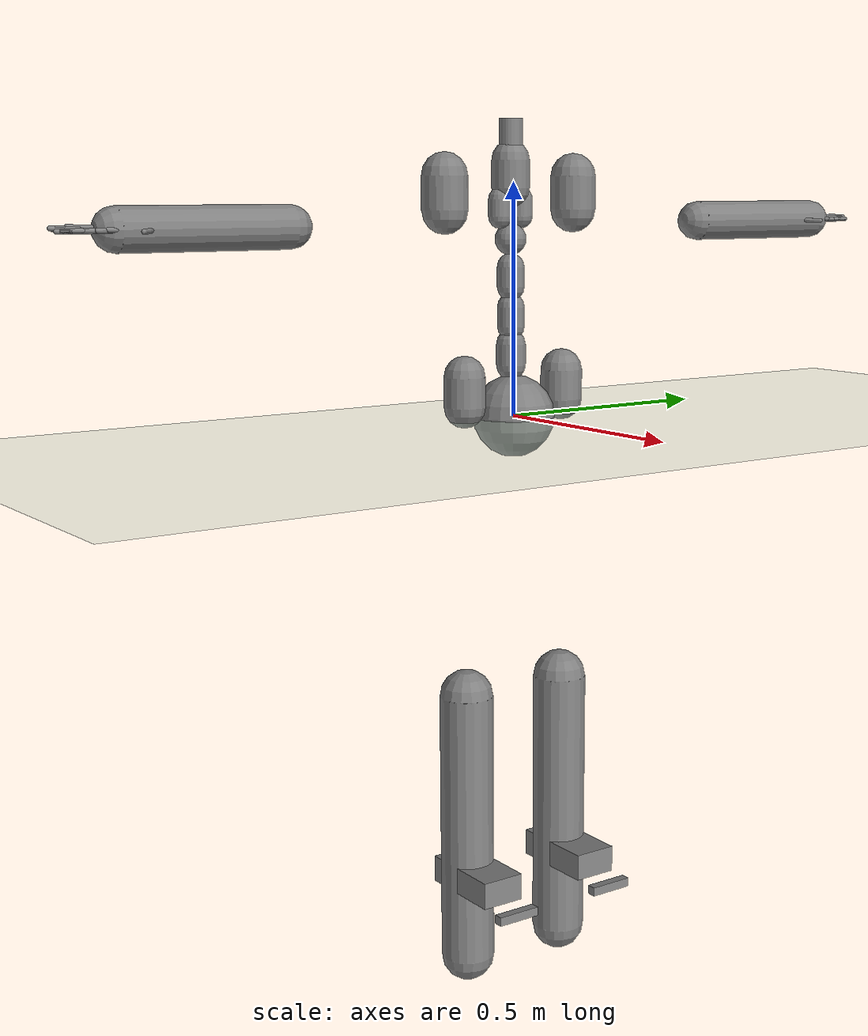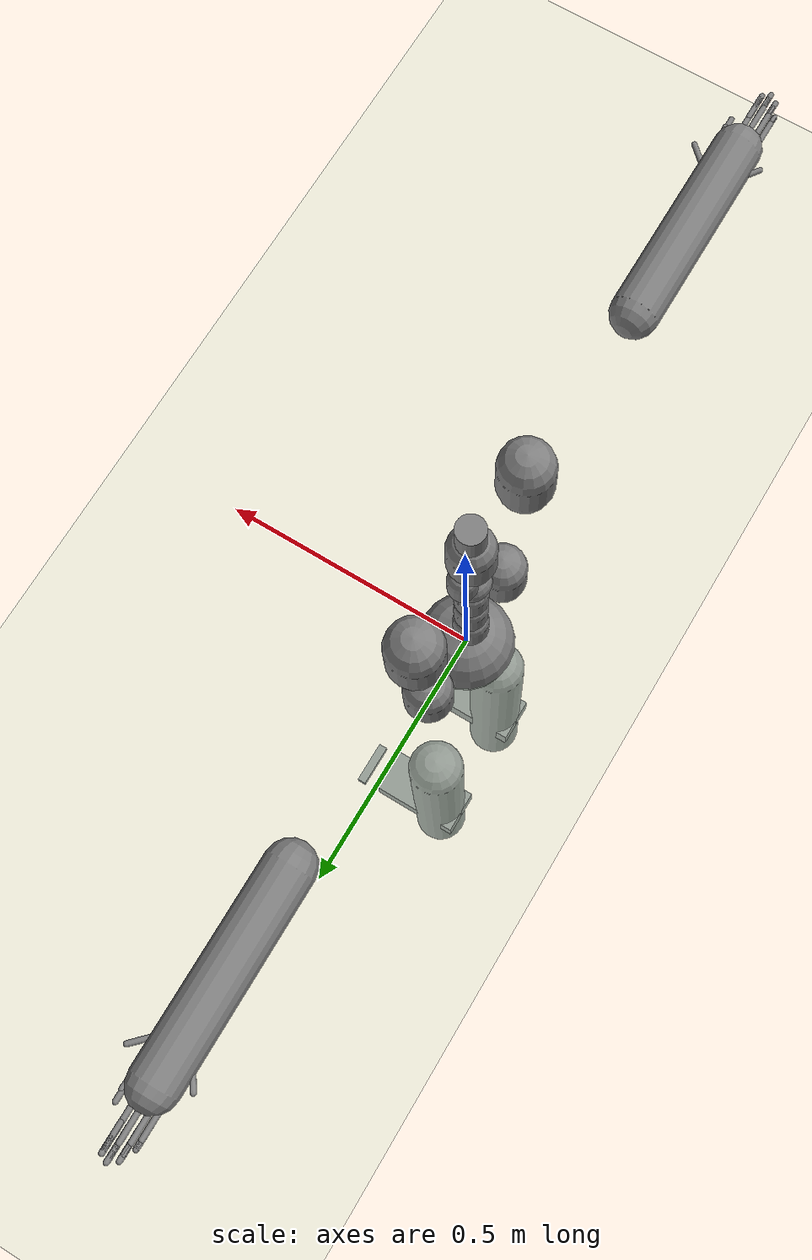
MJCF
<?xml version="1.0" ?>
<mujoco model="humanoid">
  <compiler coordinate="local"/>
  <statistic extent="2" center="0 0 1"/>
  <option timestep="0.00555"/>
  <default>
    <motor ctrlrange="-1 1" ctrllimited="true"/>
    <geom type="capsule" condim="1" friction="1.0 0.05 0.05" solimp=".9 .99 .003" solref=".015 1"/>
    <joint type="hinge" damping="0.1" stiffness="5" armature=".007" limited="true" solimplimit="0 .99 .01"/>
    <site size=".04" group="3"/>
  </default>
  <asset>
    <texture type="skybox" builtin="gradient" rgb1=".4 .5 .6" rgb2="0 0 0" width="100" height="100"/>
    <texture builtin="flat" height="1278" mark="cross" markrgb="1 1 1" name="texgeom" random="0.01" rgb1="0.8 0.6 0.4" rgb2="0.8 0.6 0.4" type="cube" width="127"/>
    <texture builtin="checker" height="100" name="texplane" rgb1="0 0 0" rgb2="0.8 0.8 0.8" type="2d" width="100"/>
    <material name="MatPlane" reflectance="0.5" shininess="1" specular="1" texrepeat="60 60" texture="texplane"/>
    <material name="geom" texture="texgeom" texuniform="true"/>
  </asset>
  <worldbody>
    <light cutoff="100" diffuse="1 1 1" dir="-0 0 -1.3" directional="true" exponent="1" pos="0 0 1.3" specular=".1 .1 .1"/>
    <geom conaffinity="1" condim="3" name="floor" pos="0 0 0" rgba="0.8 0.9 0.8 1" size="100 100 .2" type="plane" material="MatPlane"/>
    <body name="pHipOrigin" pos="0 0 0">
      <freejoint name="pHipOrigin"/>
      <geom type="sphere" contype="1" conaffinity="1" density="4629.6296296296305" size="0.08978" pos="0.0000 0.0000 -0.0000"/>
      <body name="jL5S1" pos="-0.01011643 0 0.09104762">
        <geom type="capsule" contype="1" conaffinity="1" density="1000" fromto="0 0 0.01832 0 0 0.06413" size="0.03206"/>
        <joint name="jL5S1_x" type="hinge" pos="0 0 0" axis="1 0 0" stiffness="500" damping="500" armature="0.02" range="-180.0000 180.0000"/>
        <joint name="jL5S1_y" type="hinge" pos="0 0 0" axis="0 1 0" stiffness="500" damping="500" armature="0.02" range="-180.0000 180.0000"/>
        <joint name="jL5S1_z" type="hinge" pos="0 0 0" axis="0 0 1" stiffness="500" damping="500" armature="0.02" range="-180.0000 180.0000"/>
        <body name="jL4L3" pos="0 0 0.08473152">
          <geom type="capsule" contype="1" conaffinity="1" density="1000" fromto="0 0 0.01695 0 0 0.05931" size="0.02966"/>
          <joint name="jL4L3_x" type="hinge" pos="0 0 0" axis="1 0 0" stiffness="500" damping="500" armature="0.02" range="-180.0000 180.0000"/>
          <joint name="jL4L3_y" type="hinge" pos="0 0 0" axis="0 1 0" stiffness="500" damping="500" armature="0.02" range="-180.0000 180.0000"/>
          <joint name="jL4L3_z" type="hinge" pos="0 0 0" axis="0 0 1" stiffness="500" damping="500" armature="0.02" range="-180.0000 180.0000"/>
          <body name="jL1T12" pos="-0.00065555 0 0.08497111">
            <geom type="capsule" contype="1" conaffinity="1" density="1000" fromto="0 0 0.01699 0 0 0.05948" size="0.02974"/>
            <joint name="jL1T12_x" type="hinge" pos="0 0 0" axis="1 0 0" stiffness="500" damping="500" armature="0.02" range="-180.0000 180.0000"/>
            <joint name="jL1T12_y" type="hinge" pos="0 0 0" axis="0 1 0" stiffness="500" damping="500" armature="0.02" range="-180.0000 180.0000"/>
            <joint name="jL1T12_z" type="hinge" pos="0 0 0" axis="0 0 1" stiffness="500" damping="500" armature="0.02" range="-180.0000 180.0000"/>
            <body name="jT9T8" pos="-0.00065622 0 0.08489215">
              <geom type="sphere" contype="1" conaffinity="1" density="1000" size="0.03396" pos="0.000 0.0000 0.033958"/>
              <joint name="jT9T8_x" type="hinge" pos="0 0 0" axis="1 0 0" stiffness="500" damping="500" armature="0.02" range="-180.0000 180.0000"/>
              <joint name="jT9T8_y" type="hinge" pos="0 0 0" axis="0 1 0" stiffness="500" damping="500" armature="0.02" range="-180.0000 180.0000"/>
              <joint name="jT9T8_z" type="hinge" pos="0 0 0" axis="0 0 1" stiffness="500" damping="500" armature="0.02" range="-180.0000 180.0000"/>
              <body name="jT1C7" pos="0 0 0.11715800">
                <geom type="capsule" contype="1" conaffinity="1" density="1000" fromto="0 0 0.02343 0 0 0.08201" size="0.04101"/>
                <joint name="jT1C7_x" type="hinge" pos="0 0 0" axis="1 0 0" stiffness="500" damping="500" armature="0.02" range="-180.0000 180.0000"/>
                <joint name="jT1C7_y" type="hinge" pos="0 0 0" axis="0 1 0" stiffness="500" damping="500" armature="0.02" range="-180.0000 180.0000"/>
                <joint name="jT1C7_z" type="hinge" pos="0 0 0" axis="0 0 1" stiffness="500" damping="500" armature="0.02" range="-180.0000 180.0000"/>
                <body name="jC1Head" pos="0.00098718 0 0.08367635">
                  <geom type="cylinder" contype="1" conaffinity="1" density="1000" fromto="0 0 0 0 0 0.08368" size="0.02510"/>
                  <joint name="jC1Head_x" type="hinge" pos="0 0 0" axis="1 0 0" stiffness="500" damping="500" armature="0.02" range="-180.0000 180.0000"/>
                  <joint name="jC1Head_y" type="hinge" pos="0 0 0" axis="0 1 0" stiffness="500" damping="500" armature="0.02" range="-180.0000 180.0000"/>
                  <joint name="jC1Head_z" type="hinge" pos="0 0 0" axis="0 0 1" stiffness="500" damping="500" armature="0.02" range="-180.0000 180.0000"/>
                </body>
              </body>
              <body name="jRightT4Shoulder" pos="0 -0.02748572 0.06701621">
                <geom type="capsule" contype="1" conaffinity="1" density="1000" fromto="0 0 0.01449 0 0 0.05070" size="0.02535"/>
                <joint name="jRightT4Shoulder_x" type="hinge" pos="0 0 0" axis="1 0 0" stiffness="500" damping="500" armature="0.02" range="-180.0000 180.0000"/>
                <joint name="jRightT4Shoulder_y" type="hinge" pos="0 0 0" axis="0 1 0" stiffness="500" damping="500" armature="0.02" range="-180.0000 180.0000"/>
                <joint name="jRightT4Shoulder_z" type="hinge" pos="0 0 0" axis="0 0 1" stiffness="500" damping="500" armature="0.02" range="-180.0000 180.0000"/>
                <body name="jRightShoulder" pos="0 -0.14125811 0">
                  <geom type="capsule" contype="1" conaffinity="1" density="1000" fromto="0 0 0.02825 0 0 0.09888" size="0.04944"/>
                  <joint name="jRightShoulder_x" type="hinge" pos="0 0 0" axis="1 0 0" stiffness="500" damping="500" armature="0.02" range="-180.0000 180.0000"/>
                  <joint name="jRightShoulder_y" type="hinge" pos="0 0 0" axis="0 1 0" stiffness="500" damping="500" armature="0.02" range="-180.0000 180.0000"/>
                  <joint name="jRightShoulder_z" type="hinge" pos="0 0 0" axis="0 0 1" stiffness="500" damping="500" armature="0.02" range="-180.0000 180.0000"/>
                  <body name="jRightElbow" pos="0 -0.36475235 0">
                    <geom type="capsule" contype="1" conaffinity="1" density="1000" fromto="0 0 0 0.00000000 -0.36475235 0.00000000" size="0.04377"/>
                    <joint name="jRightElbow_x" type="hinge" pos="0 0 0" axis="1 0 0" stiffness="500" damping="500" armature="0.02" range="-180.0000 180.0000"/>
                    <joint name="jRightElbow_y" type="hinge" pos="0 0 0" axis="0 1 0" stiffness="500" damping="500" armature="0.02" range="-180.0000 180.0000"/>
                    <joint name="jRightElbow_z" type="hinge" pos="0 0 0" axis="0 0 1" stiffness="500" damping="500" armature="0.02" range="-180.0000 180.0000"/>
                    <body name="jRightWrist" pos="0.00010952 -0.27212343 0">
                      <geom density="1000" type="box" pos="0 0 0" size="0.035 0.03 0.01" quat="1.0000 0.0000 0.0000 0.0000"/>
                      <joint name="jRightWrist_x" type="hinge" pos="0 0 0" axis="1 0 0" stiffness="500" damping="500" armature="0.02" range="-180.0000 180.0000"/>
                      <joint name="jRightWrist_y" type="hinge" pos="0 0 0" axis="0 1 0" stiffness="500" damping="500" armature="0.02" range="-180.0000 180.0000"/>
                      <joint name="jRightWrist_z" type="hinge" pos="0 0 0" axis="0 0 1" stiffness="500" damping="500" armature="0.02" range="-180.0000 180.0000"/>
                      <body name="jRightFirstCMC" pos="0.03404919 -0.03263805 -0.00154196">
                        <geom type="capsule" contype="1" conaffinity="1" density="1000" fromto="0 0 0 0.03404919 -0.03263805 -0.00154196" size="0.005"/>
                        <joint name="jRightFirstCMC_x" type="hinge" pos="0 0 0" axis="1 0 0" stiffness="500" damping="500" armature="0.02" range="-180.0000 180.0000"/>
                        <joint name="jRightFirstCMC_y" type="hinge" pos="0 0 0" axis="0 1 0" stiffness="500" damping="500" armature="0.02" range="-180.0000 180.0000"/>
                        <joint name="jRightFirstCMC_z" type="hinge" pos="0 0 0" axis="0 0 1" stiffness="500" damping="500" armature="0.02" range="-180.0000 180.0000"/>
                        <body name="jRightFirstMCP" pos="0.00157479 -0.04443967 0.00093901">
                          <geom type="capsule" contype="1" conaffinity="1" density="1000" fromto="0 0 0 0.00157479 -0.04443967 0.00093901" size="0.005"/>
                          <joint name="jRightFirstMCP_x" type="hinge" pos="0 0 0" axis="1 0 0" stiffness="500" damping="500" armature="0.02" range="-180.0000 180.0000"/>
                          <joint name="jRightFirstMCP_y" type="hinge" pos="0 0 0" axis="0 1 0" stiffness="500" damping="500" armature="0.02" range="-180.0000 180.0000"/>
                          <joint name="jRightFirstMCP_z" type="hinge" pos="0 0 0" axis="0 0 1" stiffness="500" damping="500" armature="0.02" range="-180.0000 180.0000"/>
                          <body name="jRightIP" pos="0 -0.03167174 0">
                            <geom type="capsule" contype="1" conaffinity="1" density="1000" fromto="0 0 0 0.00000000 -0.03167174 0.00000000" size="0.005"/>
                            <joint name="jRightIP_x" type="hinge" pos="0 0 0" axis="1 0 0" stiffness="500" damping="500" armature="0.02" range="-180.0000 180.0000"/>
                            <joint name="jRightIP_y" type="hinge" pos="0 0 0" axis="0 1 0" stiffness="500" damping="500" armature="0.02" range="-180.0000 180.0000"/>
                            <joint name="jRightIP_z" type="hinge" pos="0 0 0" axis="0 0 1" stiffness="500" damping="500" armature="0.02" range="-180.0000 180.0000"/>
                          </body>
                        </body>
                      </body>
                      <body name="jRightSecondCMC" pos="0.01242401 -0.03629903 -0.00063314">
                        <geom type="capsule" contype="1" conaffinity="1" density="1000" fromto="0 0 0 0.01242401 -0.03629903 -0.00063314" size="0.005"/>
                        <joint name="jRightSecondCMC_x" type="hinge" pos="0 0 0" axis="1 0 0" stiffness="500" damping="500" armature="0.02" range="-180.0000 180.0000"/>
                        <joint name="jRightSecondCMC_y" type="hinge" pos="0 0 0" axis="0 1 0" stiffness="500" damping="500" armature="0.02" range="-180.0000 180.0000"/>
                        <joint name="jRightSecondCMC_z" type="hinge" pos="0 0 0" axis="0 0 1" stiffness="500" damping="500" armature="0.02" range="-180.0000 180.0000"/>
                        <body name="jRightSecondMCP" pos="-0.00045076 -0.07189260 -0.00074576">
                          <geom type="capsule" contype="1" conaffinity="1" density="1000" fromto="0 0 0 -0.00045076 -0.07189260 -0.00074576" size="0.005"/>
                          <joint name="jRightSecondMCP_x" type="hinge" pos="0 0 0" axis="1 0 0" stiffness="500" damping="500" armature="0.02" range="-180.0000 180.0000"/>
                          <joint name="jRightSecondMCP_y" type="hinge" pos="0 0 0" axis="0 1 0" stiffness="500" damping="500" armature="0.02" range="-180.0000 180.0000"/>
                          <joint name="jRightSecondMCP_z" type="hinge" pos="0 0 0" axis="0 0 1" stiffness="500" damping="500" armature="0.02" range="-180.0000 180.0000"/>
                          <body name="jRightSecondPIP" pos="0 -0.05064061 0">
                            <geom type="capsule" contype="1" conaffinity="1" density="1000" fromto="0 0 0 0.00000000 -0.05064061 0.00000000" size="0.005"/>
                            <joint name="jRightSecondPIP_x" type="hinge" pos="0 0 0" axis="1 0 0" stiffness="500" damping="500" armature="0.02" range="-180.0000 180.0000"/>
                            <joint name="jRightSecondPIP_y" type="hinge" pos="0 0 0" axis="0 1 0" stiffness="500" damping="500" armature="0.02" range="-180.0000 180.0000"/>
                            <joint name="jRightSecondPIP_z" type="hinge" pos="0 0 0" axis="0 0 1" stiffness="500" damping="500" armature="0.02" range="-180.0000 180.0000"/>
                            <body name="jRightSecondDIP" pos="0 -0.02299622 0">
                              <geom type="capsule" contype="1" conaffinity="1" density="1000" fromto="0 0 0 0.00000000 -0.02299622 0.00000000" size="0.005"/>
                              <joint name="jRightSecondDIP_x" type="hinge" pos="0 0 0" axis="1 0 0" stiffness="500" damping="500" armature="0.02" range="-180.0000 180.0000"/>
                              <joint name="jRightSecondDIP_y" type="hinge" pos="0 0 0" axis="0 1 0" stiffness="500" damping="500" armature="0.02" range="-180.0000 180.0000"/>
                              <joint name="jRightSecondDIP_z" type="hinge" pos="0 0 0" axis="0 0 1" stiffness="500" damping="500" armature="0.02" range="-180.0000 180.0000"/>
                            </body>
                          </body>
                        </body>
                      </body>
                      <body name="jRightThirdCMC" pos="-0.00083953 -0.04539971 0.00190867">
                        <geom type="capsule" contype="1" conaffinity="1" density="1000" fromto="0 0 0 -0.00083953 -0.04539971 0.00190867" size="0.005"/>
                        <joint name="jRightThirdCMC_x" type="hinge" pos="0 0 0" axis="1 0 0" stiffness="500" damping="500" armature="0.02" range="-180.0000 180.0000"/>
                        <joint name="jRightThirdCMC_y" type="hinge" pos="0 0 0" axis="0 1 0" stiffness="500" damping="500" armature="0.02" range="-180.0000 180.0000"/>
                        <joint name="jRightThirdCMC_z" type="hinge" pos="0 0 0" axis="0 0 1" stiffness="500" damping="500" armature="0.02" range="-180.0000 180.0000"/>
                        <body name="jRightThirdMCP" pos="-0.00084104 -0.06968019 0.00189573">
                          <geom type="capsule" contype="1" conaffinity="1" density="1000" fromto="0 0 0 -0.00084104 -0.06968019 0.00189573" size="0.005"/>
                          <joint name="jRightThirdMCP_x" type="hinge" pos="0 0 0" axis="1 0 0" stiffness="500" damping="500" armature="0.02" range="-180.0000 180.0000"/>
                          <joint name="jRightThirdMCP_y" type="hinge" pos="0 0 0" axis="0 1 0" stiffness="500" damping="500" armature="0.02" range="-180.0000 180.0000"/>
                          <joint name="jRightThirdMCP_z" type="hinge" pos="0 0 0" axis="0 0 1" stiffness="500" damping="500" armature="0.02" range="-180.0000 180.0000"/>
                          <body name="jRightThirdPIP" pos="0 -0.04612394 0">
                            <geom type="capsule" contype="1" conaffinity="1" density="1000" fromto="0 0 0 0.00000000 -0.04612394 0.00000000" size="0.005"/>
                            <joint name="jRightThirdPIP_x" type="hinge" pos="0 0 0" axis="1 0 0" stiffness="500" damping="500" armature="0.02" range="-180.0000 180.0000"/>
                            <joint name="jRightThirdPIP_y" type="hinge" pos="0 0 0" axis="0 1 0" stiffness="500" damping="500" armature="0.02" range="-180.0000 180.0000"/>
                            <joint name="jRightThirdPIP_z" type="hinge" pos="0 0 0" axis="0 0 1" stiffness="500" damping="500" armature="0.02" range="-180.0000 180.0000"/>
                            <body name="jRightThirdDIP" pos="0 -0.02727476 0">
                              <geom type="capsule" contype="1" conaffinity="1" density="1000" fromto="0 0 0 0.00000000 -0.02727476 0.00000000" size="0.005"/>
                              <joint name="jRightThirdDIP_x" type="hinge" pos="0 0 0" axis="1 0 0" stiffness="500" damping="500" armature="0.02" range="-180.0000 180.0000"/>
                              <joint name="jRightThirdDIP_y" type="hinge" pos="0 0 0" axis="0 1 0" stiffness="500" damping="500" armature="0.02" range="-180.0000 180.0000"/>
                              <joint name="jRightThirdDIP_z" type="hinge" pos="0 0 0" axis="0 0 1" stiffness="500" damping="500" armature="0.02" range="-180.0000 180.0000"/>
                            </body>
                          </body>
                        </body>
                      </body>
                      <body name="jRightFourthCMC" pos="-0.01538732 -0.04285624 0.00100877">
                        <geom type="capsule" contype="1" conaffinity="1" density="1000" fromto="0 0 0 -0.01538732 -0.04285624 0.00100877" size="0.005"/>
                        <joint name="jRightFourthCMC_x" type="hinge" pos="0 0 0" axis="1 0 0" stiffness="500" damping="500" armature="0.02" range="-180.0000 180.0000"/>
                        <joint name="jRightFourthCMC_y" type="hinge" pos="0 0 0" axis="0 1 0" stiffness="500" damping="500" armature="0.02" range="-180.0000 180.0000"/>
                        <joint name="jRightFourthCMC_z" type="hinge" pos="0 0 0" axis="0 0 1" stiffness="500" damping="500" armature="0.02" range="-180.0000 180.0000"/>
                        <body name="jRightFourthMCP" pos="-0.00048927 -0.06705945 0.00105356">
                          <geom type="capsule" contype="1" conaffinity="1" density="1000" fromto="0 0 0 -0.00048927 -0.06705945 0.00105356" size="0.005"/>
                          <joint name="jRightFourthMCP_x" type="hinge" pos="0 0 0" axis="1 0 0" stiffness="500" damping="500" armature="0.02" range="-180.0000 180.0000"/>
                          <joint name="jRightFourthMCP_y" type="hinge" pos="0 0 0" axis="0 1 0" stiffness="500" damping="500" armature="0.02" range="-180.0000 180.0000"/>
                          <joint name="jRightFourthMCP_z" type="hinge" pos="0 0 0" axis="0 0 1" stiffness="500" damping="500" armature="0.02" range="-180.0000 180.0000"/>
                          <body name="jRightFourthPIP" pos="0 -0.04377030 0">
                            <geom type="capsule" contype="1" conaffinity="1" density="1000" fromto="0 0 0 0.00000000 -0.04377030 0.00000000" size="0.005"/>
                            <joint name="jRightFourthPIP_x" type="hinge" pos="0 0 0" axis="1 0 0" stiffness="500" damping="500" armature="0.02" range="-180.0000 180.0000"/>
                            <joint name="jRightFourthPIP_y" type="hinge" pos="0 0 0" axis="0 1 0" stiffness="500" damping="500" armature="0.02" range="-180.0000 180.0000"/>
                            <joint name="jRightFourthPIP_z" type="hinge" pos="0 0 0" axis="0 0 1" stiffness="500" damping="500" armature="0.02" range="-180.0000 180.0000"/>
                            <body name="jRightFourthDIP" pos="0 -0.02595587 0">
                              <geom type="capsule" contype="1" conaffinity="1" density="1000" fromto="0 0 0 0.00000000 -0.02595587 0.00000000" size="0.005"/>
                              <joint name="jRightFourthDIP_x" type="hinge" pos="0 0 0" axis="1 0 0" stiffness="500" damping="500" armature="0.02" range="-180.0000 180.0000"/>
                              <joint name="jRightFourthDIP_y" type="hinge" pos="0 0 0" axis="0 1 0" stiffness="500" damping="500" armature="0.02" range="-180.0000 180.0000"/>
                              <joint name="jRightFourthDIP_z" type="hinge" pos="0 0 0" axis="0 0 1" stiffness="500" damping="500" armature="0.02" range="-180.0000 180.0000"/>
                            </body>
                          </body>
                        </body>
                      </body>
                      <body name="jRightFifthCMC" pos="-0.02694735 -0.03754807 0.00074070">
                        <geom type="capsule" contype="1" conaffinity="1" density="1000" fromto="0 0 0 -0.02694735 -0.03754807 0.00074070" size="0.005"/>
                        <joint name="jRightFifthCMC_x" type="hinge" pos="0 0 0" axis="1 0 0" stiffness="500" damping="500" armature="0.02" range="-180.0000 180.0000"/>
                        <joint name="jRightFifthCMC_y" type="hinge" pos="0 0 0" axis="0 1 0" stiffness="500" damping="500" armature="0.02" range="-180.0000 180.0000"/>
                        <joint name="jRightFifthCMC_z" type="hinge" pos="0 0 0" axis="0 0 1" stiffness="500" damping="500" armature="0.02" range="-180.0000 180.0000"/>
                        <body name="jRightFifthMCP" pos="-0.00000949 -0.06424541 0.00088410">
                          <geom type="capsule" contype="1" conaffinity="1" density="1000" fromto="0 0 0 -0.00000949 -0.06424541 0.00088410" size="0.005"/>
                          <joint name="jRightFifthMCP_x" type="hinge" pos="0 0 0" axis="1 0 0" stiffness="500" damping="500" armature="0.02" range="-180.0000 180.0000"/>
                          <joint name="jRightFifthMCP_y" type="hinge" pos="0 0 0" axis="0 1 0" stiffness="500" damping="500" armature="0.02" range="-180.0000 180.0000"/>
                          <joint name="jRightFifthMCP_z" type="hinge" pos="0 0 0" axis="0 0 1" stiffness="500" damping="500" armature="0.02" range="-180.0000 180.0000"/>
                          <body name="jRightFifthPIP" pos="0 -0.03892943 0">
                            <geom type="capsule" contype="1" conaffinity="1" density="1000" fromto="0 0 0 0.00000000 -0.03892943 0.00000000" size="0.005"/>
                            <joint name="jRightFifthPIP_x" type="hinge" pos="0 0 0" axis="1 0 0" stiffness="500" damping="500" armature="0.02" range="-180.0000 180.0000"/>
                            <joint name="jRightFifthPIP_y" type="hinge" pos="0 0 0" axis="0 1 0" stiffness="500" damping="500" armature="0.02" range="-180.0000 180.0000"/>
                            <joint name="jRightFifthPIP_z" type="hinge" pos="0 0 0" axis="0 0 1" stiffness="500" damping="500" armature="0.02" range="-180.0000 180.0000"/>
                            <body name="jRightFifthDIP" pos="0 -0.01989074 0">
                              <geom type="capsule" contype="1" conaffinity="1" density="1000" fromto="0 0 0 0.00000000 -0.01989074 0.00000000" size="0.005"/>
                              <joint name="jRightFifthDIP_x" type="hinge" pos="0 0 0" axis="1 0 0" stiffness="500" damping="500" armature="0.02" range="-180.0000 180.0000"/>
                              <joint name="jRightFifthDIP_y" type="hinge" pos="0 0 0" axis="0 1 0" stiffness="500" damping="500" armature="0.02" range="-180.0000 180.0000"/>
                              <joint name="jRightFifthDIP_z" type="hinge" pos="0 0 0" axis="0 0 1" stiffness="500" damping="500" armature="0.02" range="-180.0000 180.0000"/>
                            </body>
                          </body>
                        </body>
                      </body>
                    </body>
                  </body>
                </body>
              </body>
              <body name="jLeftT4Shoulder" pos="0 0.02742913 0.06687824">
                <geom type="capsule" contype="1" conaffinity="1" density="1000" fromto="0 0 0.01446 0 0 0.05060" size="0.02530"/>
                <joint name="jLeftT4Shoulder_x" type="hinge" pos="0 0 0" axis="1 0 0" stiffness="500" damping="500" armature="0.02" range="-180.0000 180.0000"/>
                <joint name="jLeftT4Shoulder_y" type="hinge" pos="0 0 0" axis="0 1 0" stiffness="500" damping="500" armature="0.02" range="-180.0000 180.0000"/>
                <joint name="jLeftT4Shoulder_z" type="hinge" pos="0 0 0" axis="0 0 1" stiffness="500" damping="500" armature="0.02" range="-180.0000 180.0000"/>
                <body name="jLeftShoulder" pos="0 0.14121842 0">
                  <geom type="capsule" contype="1" conaffinity="1" density="1000" fromto="0 0 0.02824 0 0 0.09885" size="0.04943"/>
                  <joint name="jLeftShoulder_x" type="hinge" pos="0 0 0" axis="1 0 0" stiffness="500" damping="500" armature="0.02" range="-180.0000 180.0000"/>
                  <joint name="jLeftShoulder_y" type="hinge" pos="0 0 0" axis="0 1 0" stiffness="500" damping="500" armature="0.02" range="-180.0000 180.0000"/>
                  <joint name="jLeftShoulder_z" type="hinge" pos="0 0 0" axis="0 0 1" stiffness="500" damping="500" armature="0.02" range="-180.0000 180.0000"/>
                  <body name="jLeftElbow" pos="0 0.36485079 0">
                    <geom type="capsule" contype="1" conaffinity="1" density="1000" fromto="0 0 0 0.00000000 0.36485079 0.00000000" size="0.04378"/>
                    <joint name="jLeftElbow_x" type="hinge" pos="0 0 0" axis="1 0 0" stiffness="500" damping="500" armature="0.02" range="-180.0000 180.0000"/>
                    <joint name="jLeftElbow_y" type="hinge" pos="0 0 0" axis="0 1 0" stiffness="500" damping="500" armature="0.02" range="-180.0000 180.0000"/>
                    <joint name="jLeftElbow_z" type="hinge" pos="0 0 0" axis="0 0 1" stiffness="500" damping="500" armature="0.02" range="-180.0000 180.0000"/>
                    <body name="jLeftWrist" pos="0.00010909 0.27104801 0">
                      <geom density="1000" type="box" pos="0 0 0" size="0.035 0.03 0.01" quat="1.0000 0.0000 0.0000 0.0000"/>
                      <joint name="jLeftWrist_x" type="hinge" pos="0 0 0" axis="1 0 0" stiffness="500" damping="500" armature="0.02" range="-180.0000 180.0000"/>
                      <joint name="jLeftWrist_y" type="hinge" pos="0 0 0" axis="0 1 0" stiffness="500" damping="500" armature="0.02" range="-180.0000 180.0000"/>
                      <joint name="jLeftWrist_z" type="hinge" pos="0 0 0" axis="0 0 1" stiffness="500" damping="500" armature="0.02" range="-180.0000 180.0000"/>
                      <body name="jLeftFirstCMC" pos="0.03332613 0.03340483 -0.00149157">
                        <geom type="capsule" contype="1" conaffinity="1" density="1000" fromto="0 0 0 0.03332613 0.03340483 -0.00149157" size="0.005"/>
                        <joint name="jLeftFirstCMC_x" type="hinge" pos="0 0 0" axis="1 0 0" stiffness="500" damping="500" armature="0.02" range="-180.0000 180.0000"/>
                        <joint name="jLeftFirstCMC_y" type="hinge" pos="0 0 0" axis="0 1 0" stiffness="500" damping="500" armature="0.02" range="-180.0000 180.0000"/>
                        <joint name="jLeftFirstCMC_z" type="hinge" pos="0 0 0" axis="0 0 1" stiffness="500" damping="500" armature="0.02" range="-180.0000 180.0000"/>
                        <body name="jLeftFirstMCP" pos="0.00155963 0.04443867 0.00091510">
                          <geom type="capsule" contype="1" conaffinity="1" density="1000" fromto="0 0 0 0.00155963 0.04443867 0.00091510" size="0.005"/>
                          <joint name="jLeftFirstMCP_x" type="hinge" pos="0 0 0" axis="1 0 0" stiffness="500" damping="500" armature="0.02" range="-180.0000 180.0000"/>
                          <joint name="jLeftFirstMCP_y" type="hinge" pos="0 0 0" axis="0 1 0" stiffness="500" damping="500" armature="0.02" range="-180.0000 180.0000"/>
                          <joint name="jLeftFirstMCP_z" type="hinge" pos="0 0 0" axis="0 0 1" stiffness="500" damping="500" armature="0.02" range="-180.0000 180.0000"/>
                          <body name="jLeftIP" pos="0 0.03167174 0">
                            <geom type="capsule" contype="1" conaffinity="1" density="1000" fromto="0 0 0 0.00000000 0.03167174 0.00000000" size="0.005"/>
                            <joint name="jLeftIP_x" type="hinge" pos="0 0 0" axis="1 0 0" stiffness="500" damping="500" armature="0.02" range="-180.0000 180.0000"/>
                            <joint name="jLeftIP_y" type="hinge" pos="0 0 0" axis="0 1 0" stiffness="500" damping="500" armature="0.02" range="-180.0000 180.0000"/>
                            <joint name="jLeftIP_z" type="hinge" pos="0 0 0" axis="0 0 1" stiffness="500" damping="500" armature="0.02" range="-180.0000 180.0000"/>
                          </body>
                        </body>
                      </body>
                      <body name="jLeftSecondCMC" pos="0.01256712 0.03623224 -0.00063837">
                        <geom type="capsule" contype="1" conaffinity="1" density="1000" fromto="0 0 0 0.01256712 0.03623224 -0.00063837" size="0.005"/>
                        <joint name="jLeftSecondCMC_x" type="hinge" pos="0 0 0" axis="1 0 0" stiffness="500" damping="500" armature="0.02" range="-180.0000 180.0000"/>
                        <joint name="jLeftSecondCMC_y" type="hinge" pos="0 0 0" axis="0 1 0" stiffness="500" damping="500" armature="0.02" range="-180.0000 180.0000"/>
                        <joint name="jLeftSecondCMC_z" type="hinge" pos="0 0 0" axis="0 0 1" stiffness="500" damping="500" armature="0.02" range="-180.0000 180.0000"/>
                        <body name="jLeftSecondMCP" pos="-0.00039303 0.07189407 -0.00075498">
                          <geom type="capsule" contype="1" conaffinity="1" density="1000" fromto="0 0 0 -0.00039303 0.07189407 -0.00075498" size="0.005"/>
                          <joint name="jLeftSecondMCP_x" type="hinge" pos="0 0 0" axis="1 0 0" stiffness="500" damping="500" armature="0.02" range="-180.0000 180.0000"/>
                          <joint name="jLeftSecondMCP_y" type="hinge" pos="0 0 0" axis="0 1 0" stiffness="500" damping="500" armature="0.02" range="-180.0000 180.0000"/>
                          <joint name="jLeftSecondMCP_z" type="hinge" pos="0 0 0" axis="0 0 1" stiffness="500" damping="500" armature="0.02" range="-180.0000 180.0000"/>
                          <body name="jLeftSecondPIP" pos="0 0.05064061 0">
                            <geom type="capsule" contype="1" conaffinity="1" density="1000" fromto="0 0 0 0.00000000 0.05064061 0.00000000" size="0.005"/>
                            <joint name="jLeftSecondPIP_x" type="hinge" pos="0 0 0" axis="1 0 0" stiffness="500" damping="500" armature="0.02" range="-180.0000 180.0000"/>
                            <joint name="jLeftSecondPIP_y" type="hinge" pos="0 0 0" axis="0 1 0" stiffness="500" damping="500" armature="0.02" range="-180.0000 180.0000"/>
                            <joint name="jLeftSecondPIP_z" type="hinge" pos="0 0 0" axis="0 0 1" stiffness="500" damping="500" armature="0.02" range="-180.0000 180.0000"/>
                            <body name="jLeftSecondDIP" pos="0 0.02299622 0">
                              <geom type="capsule" contype="1" conaffinity="1" density="1000" fromto="0 0 0 0.00000000 0.02299622 0.00000000" size="0.005"/>
                              <joint name="jLeftSecondDIP_x" type="hinge" pos="0 0 0" axis="1 0 0" stiffness="500" damping="500" armature="0.02" range="-180.0000 180.0000"/>
                              <joint name="jLeftSecondDIP_y" type="hinge" pos="0 0 0" axis="0 1 0" stiffness="500" damping="500" armature="0.02" range="-180.0000 180.0000"/>
                              <joint name="jLeftSecondDIP_z" type="hinge" pos="0 0 0" axis="0 0 1" stiffness="500" damping="500" armature="0.02" range="-180.0000 180.0000"/>
                            </body>
                          </body>
                        </body>
                      </body>
                      <body name="jLeftThirdCMC" pos="-0.00084446 0.04540379 0.00184505">
                        <geom type="capsule" contype="1" conaffinity="1" density="1000" fromto="0 0 0 -0.00084446 0.04540379 0.00184505" size="0.005"/>
                        <joint name="jLeftThirdCMC_x" type="hinge" pos="0 0 0" axis="1 0 0" stiffness="500" damping="500" armature="0.02" range="-180.0000 180.0000"/>
                        <joint name="jLeftThirdCMC_y" type="hinge" pos="0 0 0" axis="0 1 0" stiffness="500" damping="500" armature="0.02" range="-180.0000 180.0000"/>
                        <joint name="jLeftThirdCMC_z" type="hinge" pos="0 0 0" axis="0 0 1" stiffness="500" damping="500" armature="0.02" range="-180.0000 180.0000"/>
                        <body name="jLeftThirdMCP" pos="-0.00084783 0.06968155 0.00185762">
                          <geom type="capsule" contype="1" conaffinity="1" density="1000" fromto="0 0 0 -0.00084783 0.06968155 0.00185762" size="0.005"/>
                          <joint name="jLeftThirdMCP_x" type="hinge" pos="0 0 0" axis="1 0 0" stiffness="500" damping="500" armature="0.02" range="-180.0000 180.0000"/>
                          <joint name="jLeftThirdMCP_y" type="hinge" pos="0 0 0" axis="0 1 0" stiffness="500" damping="500" armature="0.02" range="-180.0000 180.0000"/>
                          <joint name="jLeftThirdMCP_z" type="hinge" pos="0 0 0" axis="0 0 1" stiffness="500" damping="500" armature="0.02" range="-180.0000 180.0000"/>
                          <body name="jLeftThirdPIP" pos="0 0.04612394 0">
                            <geom type="capsule" contype="1" conaffinity="1" density="1000" fromto="0 0 0 0.00000000 0.04612394 0.00000000" size="0.005"/>
                            <joint name="jLeftThirdPIP_x" type="hinge" pos="0 0 0" axis="1 0 0" stiffness="500" damping="500" armature="0.02" range="-180.0000 180.0000"/>
                            <joint name="jLeftThirdPIP_y" type="hinge" pos="0 0 0" axis="0 1 0" stiffness="500" damping="500" armature="0.02" range="-180.0000 180.0000"/>
                            <joint name="jLeftThirdPIP_z" type="hinge" pos="0 0 0" axis="0 0 1" stiffness="500" damping="500" armature="0.02" range="-180.0000 180.0000"/>
                            <body name="jLeftThirdDIP" pos="0 0.02727476 0">
                              <geom type="capsule" contype="1" conaffinity="1" density="1000" fromto="0 0 0 0.00000000 0.02727476 0.00000000" size="0.005"/>
                              <joint name="jLeftThirdDIP_x" type="hinge" pos="0 0 0" axis="1 0 0" stiffness="500" damping="500" armature="0.02" range="-180.0000 180.0000"/>
                              <joint name="jLeftThirdDIP_y" type="hinge" pos="0 0 0" axis="0 1 0" stiffness="500" damping="500" armature="0.02" range="-180.0000 180.0000"/>
                              <joint name="jLeftThirdDIP_z" type="hinge" pos="0 0 0" axis="0 0 1" stiffness="500" damping="500" armature="0.02" range="-180.0000 180.0000"/>
                            </body>
                          </body>
                        </body>
                      </body>
                      <body name="jLeftFourthCMC" pos="-0.01595194 0.04263703 0.00107685">
                        <geom type="capsule" contype="1" conaffinity="1" density="1000" fromto="0 0 0 -0.01595194 0.04263703 0.00107685" size="0.005"/>
                        <joint name="jLeftFourthCMC_x" type="hinge" pos="0 0 0" axis="1 0 0" stiffness="500" damping="500" armature="0.02" range="-180.0000 180.0000"/>
                        <joint name="jLeftFourthCMC_y" type="hinge" pos="0 0 0" axis="0 1 0" stiffness="500" damping="500" armature="0.02" range="-180.0000 180.0000"/>
                        <joint name="jLeftFourthCMC_z" type="hinge" pos="0 0 0" axis="0 0 1" stiffness="500" damping="500" armature="0.02" range="-180.0000 180.0000"/>
                        <body name="jLeftFourthMCP" pos="-0.00052617 0.06705561 0.00111426">
                          <geom type="capsule" contype="1" conaffinity="1" density="1000" fromto="0 0 0 -0.00052617 0.06705561 0.00111426" size="0.005"/>
                          <joint name="jLeftFourthMCP_x" type="hinge" pos="0 0 0" axis="1 0 0" stiffness="500" damping="500" armature="0.02" range="-180.0000 180.0000"/>
                          <joint name="jLeftFourthMCP_y" type="hinge" pos="0 0 0" axis="0 1 0" stiffness="500" damping="500" armature="0.02" range="-180.0000 180.0000"/>
                          <joint name="jLeftFourthMCP_z" type="hinge" pos="0 0 0" axis="0 0 1" stiffness="500" damping="500" armature="0.02" range="-180.0000 180.0000"/>
                          <body name="jLeftFourthPIP" pos="0 0.04377030 0">
                            <geom type="capsule" contype="1" conaffinity="1" density="1000" fromto="0 0 0 0.00000000 0.04377030 0.00000000" size="0.005"/>
                            <joint name="jLeftFourthPIP_x" type="hinge" pos="0 0 0" axis="1 0 0" stiffness="500" damping="500" armature="0.02" range="-180.0000 180.0000"/>
                            <joint name="jLeftFourthPIP_y" type="hinge" pos="0 0 0" axis="0 1 0" stiffness="500" damping="500" armature="0.02" range="-180.0000 180.0000"/>
                            <joint name="jLeftFourthPIP_z" type="hinge" pos="0 0 0" axis="0 0 1" stiffness="500" damping="500" armature="0.02" range="-180.0000 180.0000"/>
                            <body name="jLeftFourthDIP" pos="0 0.02595587 0">
                              <geom type="capsule" contype="1" conaffinity="1" density="1000" fromto="0 0 0 0.00000000 0.02595587 0.00000000" size="0.005"/>
                              <joint name="jLeftFourthDIP_x" type="hinge" pos="0 0 0" axis="1 0 0" stiffness="500" damping="500" armature="0.02" range="-180.0000 180.0000"/>
                              <joint name="jLeftFourthDIP_y" type="hinge" pos="0 0 0" axis="0 1 0" stiffness="500" damping="500" armature="0.02" range="-180.0000 180.0000"/>
                              <joint name="jLeftFourthDIP_z" type="hinge" pos="0 0 0" axis="0 0 1" stiffness="500" damping="500" armature="0.02" range="-180.0000 180.0000"/>
                            </body>
                          </body>
                        </body>
                      </body>
                      <body name="jLeftFifthCMC" pos="-0.02776369 0.03695446 0.00075261">
                        <geom type="capsule" contype="1" conaffinity="1" density="1000" fromto="0 0 0 -0.02776369 0.03695446 0.00075261" size="0.005"/>
                        <joint name="jLeftFifthCMC_x" type="hinge" pos="0 0 0" axis="1 0 0" stiffness="500" damping="500" armature="0.02" range="-180.0000 180.0000"/>
                        <joint name="jLeftFifthCMC_y" type="hinge" pos="0 0 0" axis="0 1 0" stiffness="500" damping="500" armature="0.02" range="-180.0000 180.0000"/>
                        <joint name="jLeftFifthCMC_z" type="hinge" pos="0 0 0" axis="0 0 1" stiffness="500" damping="500" armature="0.02" range="-180.0000 180.0000"/>
                        <body name="jLeftFifthMCP" pos="-0.00001822 0.06424366 0.00092443">
                          <geom type="capsule" contype="1" conaffinity="1" density="1000" fromto="0 0 0 -0.00001822 0.06424366 0.00092443" size="0.005"/>
                          <joint name="jLeftFifthMCP_x" type="hinge" pos="0 0 0" axis="1 0 0" stiffness="500" damping="500" armature="0.02" range="-180.0000 180.0000"/>
                          <joint name="jLeftFifthMCP_y" type="hinge" pos="0 0 0" axis="0 1 0" stiffness="500" damping="500" armature="0.02" range="-180.0000 180.0000"/>
                          <joint name="jLeftFifthMCP_z" type="hinge" pos="0 0 0" axis="0 0 1" stiffness="500" damping="500" armature="0.02" range="-180.0000 180.0000"/>
                          <body name="jLeftFifthPIP" pos="0 0.03892943 0">
                            <geom type="capsule" contype="1" conaffinity="1" density="1000" fromto="0 0 0 0.00000000 0.03892943 0.00000000" size="0.005"/>
                            <joint name="jLeftFifthPIP_x" type="hinge" pos="0 0 0" axis="1 0 0" stiffness="500" damping="500" armature="0.02" range="-180.0000 180.0000"/>
                            <joint name="jLeftFifthPIP_y" type="hinge" pos="0 0 0" axis="0 1 0" stiffness="500" damping="500" armature="0.02" range="-180.0000 180.0000"/>
                            <joint name="jLeftFifthPIP_z" type="hinge" pos="0 0 0" axis="0 0 1" stiffness="500" damping="500" armature="0.02" range="-180.0000 180.0000"/>
                            <body name="jLeftFifthDIP" pos="0 0.01989074 0">
                              <geom type="capsule" contype="1" conaffinity="1" density="1000" fromto="0 0 0 0.00000000 0.01989074 0.00000000" size="0.005"/>
                              <joint name="jLeftFifthDIP_x" type="hinge" pos="0 0 0" axis="1 0 0" stiffness="500" damping="500" armature="0.02" range="-180.0000 180.0000"/>
                              <joint name="jLeftFifthDIP_y" type="hinge" pos="0 0 0" axis="0 1 0" stiffness="500" damping="500" armature="0.02" range="-180.0000 180.0000"/>
                              <joint name="jLeftFifthDIP_z" type="hinge" pos="0 0 0" axis="0 0 1" stiffness="500" damping="500" armature="0.02" range="-180.0000 180.0000"/>
                            </body>
                          </body>
                        </body>
                      </body>
                    </body>
                  </body>
                </body>
              </body>
            </body>
          </body>
        </body>
      </body>
      <body name="jRightHip" pos="-0.00021763 -0.12915407 0.00195923">
        <geom type="capsule" contype="1" conaffinity="1" density="1000" fromto="0 0 0.02583 0 0 0.09042" size="0.04521"/>
        <joint name="jRightHip_x" type="hinge" pos="0 0 0" axis="1 0 0" stiffness="500" damping="500" armature="0.02" range="-180.0000 180.0000"/>
        <joint name="jRightHip_y" type="hinge" pos="0 0 0" axis="0 1 0" stiffness="500" damping="500" armature="0.02" range="-180.0000 180.0000"/>
        <joint name="jRightHip_z" type="hinge" pos="0 0 0" axis="0 0 1" stiffness="500" damping="500" armature="0.02" range="-180.0000 180.0000"/>
        <body name="jRightKnee" pos="0.00007393 0 -0.62001985">
          <geom type="capsule" contype="1" conaffinity="1" density="1000" fromto="0 0 0 0.00007393 0.00000000 -0.62001985" size="0.06000"/>
          <joint name="jRightKnee_x" type="hinge" pos="0 0 0" axis="1 0 0" stiffness="500" damping="500" armature="0.02" range="-180.0000 180.0000"/>
          <joint name="jRightKnee_y" type="hinge" pos="0 0 0" axis="0 1 0" stiffness="500" damping="500" armature="0.02" range="-180.0000 180.0000"/>
          <joint name="jRightKnee_z" type="hinge" pos="0 0 0" axis="0 0 1" stiffness="500" damping="500" armature="0.02" range="-180.0000 180.0000"/>
          <body name="jRightAnkle" pos="0.00043909 0 -0.38886607">
            <geom density="1000" type="box" pos="0.04 0. -0.03" size="0.1 0.05 0.03" quat="1.0 0 0 0"/>
            <joint name="jRightAnkle_x" type="hinge" pos="0 0 0" axis="1 0 0" stiffness="500" damping="500" armature="0.02" range="-180.0000 180.0000"/>
            <joint name="jRightAnkle_y" type="hinge" pos="0 0 0" axis="0 1 0" stiffness="500" damping="500" armature="0.02" range="-180.0000 180.0000"/>
            <joint name="jRightAnkle_z" type="hinge" pos="0 0 0" axis="0 0 1" stiffness="500" damping="500" armature="0.02" range="-180.0000 180.0000"/>
            <body name="jRightBallFoot" pos="0.19061388 0 -0.08744622">
              <geom density="1000" type="box" pos="0 0 0.02" size="0.01 0.05 0.01" quat="1.0 0 0 0"/>
              <joint name="jRightBallFoot_x" type="hinge" pos="0 0 0" axis="1 0 0" stiffness="500" damping="500" armature="0.02" range="-180.0000 180.0000"/>
              <joint name="jRightBallFoot_y" type="hinge" pos="0 0 0" axis="0 1 0" stiffness="500" damping="500" armature="0.02" range="-180.0000 180.0000"/>
              <joint name="jRightBallFoot_z" type="hinge" pos="0 0 0" axis="0 0 1" stiffness="500" damping="500" armature="0.02" range="-180.0000 180.0000"/>
            </body>
          </body>
        </body>
      </body>
      <body name="jLeftHip" pos="-0.00021774 0.13090500 0.00195952">
        <geom type="capsule" contype="1" conaffinity="1" density="1000" fromto="0 0 0.02618 0 0 0.09164" size="0.04582"/>
        <joint name="jLeftHip_x" type="hinge" pos="0 0 0" axis="1 0 0" stiffness="500" damping="500" armature="0.02" range="-180.0000 180.0000"/>
        <joint name="jLeftHip_y" type="hinge" pos="0 0 0" axis="0 1 0" stiffness="500" damping="500" armature="0.02" range="-180.0000 180.0000"/>
        <joint name="jLeftHip_z" type="hinge" pos="0 0 0" axis="0 0 1" stiffness="500" damping="500" armature="0.02" range="-180.0000 180.0000"/>
        <body name="jLeftKnee" pos="0.00007344 0 -0.61594343">
          <geom type="capsule" contype="1" conaffinity="1" density="1000" fromto="0 0 0 0.00007344 0.00000000 -0.61594343" size="0.06000"/>
          <joint name="jLeftKnee_x" type="hinge" pos="0 0 0" axis="1 0 0" stiffness="500" damping="500" armature="0.02" range="-180.0000 180.0000"/>
          <joint name="jLeftKnee_y" type="hinge" pos="0 0 0" axis="0 1 0" stiffness="500" damping="500" armature="0.02" range="-180.0000 180.0000"/>
          <joint name="jLeftKnee_z" type="hinge" pos="0 0 0" axis="0 0 1" stiffness="500" damping="500" armature="0.02" range="-180.0000 180.0000"/>
          <body name="jLeftAnkle" pos="0.00043909 0 -0.38886601">
            <geom density="1000" type="box" pos="0.04 0. -0.03" size="0.1 0.05 0.03" quat="1.0 0 0 0"/>
            <joint name="jLeftAnkle_x" type="hinge" pos="0 0 0" axis="1 0 0" stiffness="500" damping="500" armature="0.02" range="-180.0000 180.0000"/>
            <joint name="jLeftAnkle_y" type="hinge" pos="0 0 0" axis="0 1 0" stiffness="500" damping="500" armature="0.02" range="-180.0000 180.0000"/>
            <joint name="jLeftAnkle_z" type="hinge" pos="0 0 0" axis="0 0 1" stiffness="500" damping="500" armature="0.02" range="-180.0000 180.0000"/>
            <body name="jLeftBallFoot" pos="0.19061386 0 -0.08744621">
              <geom density="1000" type="box" pos="0 0 0.02" size="0.01 0.05 0.01" quat="1.0 0 0 0"/>
              <joint name="jLeftBallFoot_x" type="hinge" pos="0 0 0" axis="1 0 0" stiffness="500" damping="500" armature="0.02" range="-180.0000 180.0000"/>
              <joint name="jLeftBallFoot_y" type="hinge" pos="0 0 0" axis="0 1 0" stiffness="500" damping="500" armature="0.02" range="-180.0000 180.0000"/>
              <joint name="jLeftBallFoot_z" type="hinge" pos="0 0 0" axis="0 0 1" stiffness="500" damping="500" armature="0.02" range="-180.0000 180.0000"/>
            </body>
          </body>
        </body>
      </body>
    </body>
  </worldbody>
  <actuator>
    <motor name="jL5S1_x" joint="jL5S1_x" gear="500"/>
    <motor name="jL5S1_y" joint="jL5S1_y" gear="500"/>
    <motor name="jL5S1_z" joint="jL5S1_z" gear="500"/>
    <motor name="jL4L3_x" joint="jL4L3_x" gear="500"/>
    <motor name="jL4L3_y" joint="jL4L3_y" gear="500"/>
    <motor name="jL4L3_z" joint="jL4L3_z" gear="500"/>
    <motor name="jL1T12_x" joint="jL1T12_x" gear="500"/>
    <motor name="jL1T12_y" joint="jL1T12_y" gear="500"/>
    <motor name="jL1T12_z" joint="jL1T12_z" gear="500"/>
    <motor name="jT9T8_x" joint="jT9T8_x" gear="500"/>
    <motor name="jT9T8_y" joint="jT9T8_y" gear="500"/>
    <motor name="jT9T8_z" joint="jT9T8_z" gear="500"/>
    <motor name="jT1C7_x" joint="jT1C7_x" gear="500"/>
    <motor name="jT1C7_y" joint="jT1C7_y" gear="500"/>
    <motor name="jT1C7_z" joint="jT1C7_z" gear="500"/>
    <motor name="jC1Head_x" joint="jC1Head_x" gear="500"/>
    <motor name="jC1Head_y" joint="jC1Head_y" gear="500"/>
    <motor name="jC1Head_z" joint="jC1Head_z" gear="500"/>
    <motor name="jRightT4Shoulder_x" joint="jRightT4Shoulder_x" gear="500"/>
    <motor name="jRightT4Shoulder_y" joint="jRightT4Shoulder_y" gear="500"/>
    <motor name="jRightT4Shoulder_z" joint="jRightT4Shoulder_z" gear="500"/>
    <motor name="jRightShoulder_x" joint="jRightShoulder_x" gear="500"/>
    <motor name="jRightShoulder_y" joint="jRightShoulder_y" gear="500"/>
    <motor name="jRightShoulder_z" joint="jRightShoulder_z" gear="500"/>
    <motor name="jRightElbow_x" joint="jRightElbow_x" gear="500"/>
    <motor name="jRightElbow_y" joint="jRightElbow_y" gear="500"/>
    <motor name="jRightElbow_z" joint="jRightElbow_z" gear="500"/>
    <motor name="jRightWrist_x" joint="jRightWrist_x" gear="500"/>
    <motor name="jRightWrist_y" joint="jRightWrist_y" gear="500"/>
    <motor name="jRightWrist_z" joint="jRightWrist_z" gear="500"/>
    <motor name="jLeftT4Shoulder_x" joint="jLeftT4Shoulder_x" gear="500"/>
    <motor name="jLeftT4Shoulder_y" joint="jLeftT4Shoulder_y" gear="500"/>
    <motor name="jLeftT4Shoulder_z" joint="jLeftT4Shoulder_z" gear="500"/>
    <motor name="jLeftShoulder_x" joint="jLeftShoulder_x" gear="500"/>
    <motor name="jLeftShoulder_y" joint="jLeftShoulder_y" gear="500"/>
    <motor name="jLeftShoulder_z" joint="jLeftShoulder_z" gear="500"/>
    <motor name="jLeftElbow_x" joint="jLeftElbow_x" gear="500"/>
    <motor name="jLeftElbow_y" joint="jLeftElbow_y" gear="500"/>
    <motor name="jLeftElbow_z" joint="jLeftElbow_z" gear="500"/>
    <motor name="jLeftWrist_x" joint="jLeftWrist_x" gear="500"/>
    <motor name="jLeftWrist_y" joint="jLeftWrist_y" gear="500"/>
    <motor name="jLeftWrist_z" joint="jLeftWrist_z" gear="500"/>
    <motor name="jRightHip_x" joint="jRightHip_x" gear="500"/>
    <motor name="jRightHip_y" joint="jRightHip_y" gear="500"/>
    <motor name="jRightHip_z" joint="jRightHip_z" gear="500"/>
    <motor name="jRightKnee_x" joint="jRightKnee_x" gear="500"/>
    <motor name="jRightKnee_y" joint="jRightKnee_y" gear="500"/>
    <motor name="jRightKnee_z" joint="jRightKnee_z" gear="500"/>
    <motor name="jRightAnkle_x" joint="jRightAnkle_x" gear="500"/>
    <motor name="jRightAnkle_y" joint="jRightAnkle_y" gear="500"/>
    <motor name="jRightAnkle_z" joint="jRightAnkle_z" gear="500"/>
    <motor name="jRightBallFoot_x" joint="jRightBallFoot_x" gear="500"/>
    <motor name="jRightBallFoot_y" joint="jRightBallFoot_y" gear="500"/>
    <motor name="jRightBallFoot_z" joint="jRightBallFoot_z" gear="500"/>
    <motor name="jLeftHip_x" joint="jLeftHip_x" gear="500"/>
    <motor name="jLeftHip_y" joint="jLeftHip_y" gear="500"/>
    <motor name="jLeftHip_z" joint="jLeftHip_z" gear="500"/>
    <motor name="jLeftKnee_x" joint="jLeftKnee_x" gear="500"/>
    <motor name="jLeftKnee_y" joint="jLeftKnee_y" gear="500"/>
    <motor name="jLeftKnee_z" joint="jLeftKnee_z" gear="500"/>
    <motor name="jLeftAnkle_x" joint="jLeftAnkle_x" gear="500"/>
    <motor name="jLeftAnkle_y" joint="jLeftAnkle_y" gear="500"/>
    <motor name="jLeftAnkle_z" joint="jLeftAnkle_z" gear="500"/>
    <motor name="jLeftBallFoot_x" joint="jLeftBallFoot_x" gear="500"/>
    <motor name="jLeftBallFoot_y" joint="jLeftBallFoot_y" gear="500"/>
    <motor name="jLeftBallFoot_z" joint="jLeftBallFoot_z" gear="500"/>
    <motor name="jLeftFirstCMC_x" joint="jLeftFirstCMC_x" gear="500"/>
    <motor name="jLeftFirstCMC_y" joint="jLeftFirstCMC_y" gear="500"/>
    <motor name="jLeftFirstCMC_z" joint="jLeftFirstCMC_z" gear="500"/>
    <motor name="jLeftFirstMCP_x" joint="jLeftFirstMCP_x" gear="500"/>
    <motor name="jLeftFirstMCP_y" joint="jLeftFirstMCP_y" gear="500"/>
    <motor name="jLeftFirstMCP_z" joint="jLeftFirstMCP_z" gear="500"/>
    <motor name="jLeftIP_x" joint="jLeftIP_x" gear="500"/>
    <motor name="jLeftIP_y" joint="jLeftIP_y" gear="500"/>
    <motor name="jLeftIP_z" joint="jLeftIP_z" gear="500"/>
    <motor name="jLeftSecondCMC_x" joint="jLeftSecondCMC_x" gear="500"/>
    <motor name="jLeftSecondCMC_y" joint="jLeftSecondCMC_y" gear="500"/>
    <motor name="jLeftSecondCMC_z" joint="jLeftSecondCMC_z" gear="500"/>
    <motor name="jLeftSecondMCP_x" joint="jLeftSecondMCP_x" gear="500"/>
    <motor name="jLeftSecondMCP_y" joint="jLeftSecondMCP_y" gear="500"/>
    <motor name="jLeftSecondMCP_z" joint="jLeftSecondMCP_z" gear="500"/>
    <motor name="jLeftSecondPIP_x" joint="jLeftSecondPIP_x" gear="500"/>
    <motor name="jLeftSecondPIP_y" joint="jLeftSecondPIP_y" gear="500"/>
    <motor name="jLeftSecondPIP_z" joint="jLeftSecondPIP_z" gear="500"/>
    <motor name="jLeftSecondDIP_x" joint="jLeftSecondDIP_x" gear="500"/>
    <motor name="jLeftSecondDIP_y" joint="jLeftSecondDIP_y" gear="500"/>
    <motor name="jLeftSecondDIP_z" joint="jLeftSecondDIP_z" gear="500"/>
    <motor name="jLeftThirdCMC_x" joint="jLeftThirdCMC_x" gear="500"/>
    <motor name="jLeftThirdCMC_y" joint="jLeftThirdCMC_y" gear="500"/>
    <motor name="jLeftThirdCMC_z" joint="jLeftThirdCMC_z" gear="500"/>
    <motor name="jLeftThirdMCP_x" joint="jLeftThirdMCP_x" gear="500"/>
    <motor name="jLeftThirdMCP_y" joint="jLeftThirdMCP_y" gear="500"/>
    <motor name="jLeftThirdMCP_z" joint="jLeftThirdMCP_z" gear="500"/>
    <motor name="jLeftThirdPIP_x" joint="jLeftThirdPIP_x" gear="500"/>
    <motor name="jLeftThirdPIP_y" joint="jLeftThirdPIP_y" gear="500"/>
    <motor name="jLeftThirdPIP_z" joint="jLeftThirdPIP_z" gear="500"/>
    <motor name="jLeftThirdDIP_x" joint="jLeftThirdDIP_x" gear="500"/>
    <motor name="jLeftThirdDIP_y" joint="jLeftThirdDIP_y" gear="500"/>
    <motor name="jLeftThirdDIP_z" joint="jLeftThirdDIP_z" gear="500"/>
    <motor name="jLeftFourthCMC_x" joint="jLeftFourthCMC_x" gear="500"/>
    <motor name="jLeftFourthCMC_y" joint="jLeftFourthCMC_y" gear="500"/>
    <motor name="jLeftFourthCMC_z" joint="jLeftFourthCMC_z" gear="500"/>
    <motor name="jLeftFourthMCP_x" joint="jLeftFourthMCP_x" gear="500"/>
    <motor name="jLeftFourthMCP_y" joint="jLeftFourthMCP_y" gear="500"/>
    <motor name="jLeftFourthMCP_z" joint="jLeftFourthMCP_z" gear="500"/>
    <motor name="jLeftFourthPIP_x" joint="jLeftFourthPIP_x" gear="500"/>
    <motor name="jLeftFourthPIP_y" joint="jLeftFourthPIP_y" gear="500"/>
    <motor name="jLeftFourthPIP_z" joint="jLeftFourthPIP_z" gear="500"/>
    <motor name="jLeftFourthDIP_x" joint="jLeftFourthDIP_x" gear="500"/>
    <motor name="jLeftFourthDIP_y" joint="jLeftFourthDIP_y" gear="500"/>
    <motor name="jLeftFourthDIP_z" joint="jLeftFourthDIP_z" gear="500"/>
    <motor name="jLeftFifthCMC_x" joint="jLeftFifthCMC_x" gear="500"/>
    <motor name="jLeftFifthCMC_y" joint="jLeftFifthCMC_y" gear="500"/>
    <motor name="jLeftFifthCMC_z" joint="jLeftFifthCMC_z" gear="500"/>
    <motor name="jLeftFifthMCP_x" joint="jLeftFifthMCP_x" gear="500"/>
    <motor name="jLeftFifthMCP_y" joint="jLeftFifthMCP_y" gear="500"/>
    <motor name="jLeftFifthMCP_z" joint="jLeftFifthMCP_z" gear="500"/>
    <motor name="jLeftFifthPIP_x" joint="jLeftFifthPIP_x" gear="500"/>
    <motor name="jLeftFifthPIP_y" joint="jLeftFifthPIP_y" gear="500"/>
    <motor name="jLeftFifthPIP_z" joint="jLeftFifthPIP_z" gear="500"/>
    <motor name="jLeftFifthDIP_x" joint="jLeftFifthDIP_x" gear="500"/>
    <motor name="jLeftFifthDIP_y" joint="jLeftFifthDIP_y" gear="500"/>
    <motor name="jLeftFifthDIP_z" joint="jLeftFifthDIP_z" gear="500"/>
    <motor name="jRightFirstCMC_x" joint="jRightFirstCMC_x" gear="500"/>
    <motor name="jRightFirstCMC_y" joint="jRightFirstCMC_y" gear="500"/>
    <motor name="jRightFirstCMC_z" joint="jRightFirstCMC_z" gear="500"/>
    <motor name="jRightFirstMCP_x" joint="jRightFirstMCP_x" gear="500"/>
    <motor name="jRightFirstMCP_y" joint="jRightFirstMCP_y" gear="500"/>
    <motor name="jRightFirstMCP_z" joint="jRightFirstMCP_z" gear="500"/>
    <motor name="jRightIP_x" joint="jRightIP_x" gear="500"/>
    <motor name="jRightIP_y" joint="jRightIP_y" gear="500"/>
    <motor name="jRightIP_z" joint="jRightIP_z" gear="500"/>
    <motor name="jRightSecondCMC_x" joint="jRightSecondCMC_x" gear="500"/>
    <motor name="jRightSecondCMC_y" joint="jRightSecondCMC_y" gear="500"/>
    <motor name="jRightSecondCMC_z" joint="jRightSecondCMC_z" gear="500"/>
    <motor name="jRightSecondMCP_x" joint="jRightSecondMCP_x" gear="500"/>
    <motor name="jRightSecondMCP_y" joint="jRightSecondMCP_y" gear="500"/>
    <motor name="jRightSecondMCP_z" joint="jRightSecondMCP_z" gear="500"/>
    <motor name="jRightSecondPIP_x" joint="jRightSecondPIP_x" gear="500"/>
    <motor name="jRightSecondPIP_y" joint="jRightSecondPIP_y" gear="500"/>
    <motor name="jRightSecondPIP_z" joint="jRightSecondPIP_z" gear="500"/>
    <motor name="jRightSecondDIP_x" joint="jRightSecondDIP_x" gear="500"/>
    <motor name="jRightSecondDIP_y" joint="jRightSecondDIP_y" gear="500"/>
    <motor name="jRightSecondDIP_z" joint="jRightSecondDIP_z" gear="500"/>
    <motor name="jRightThirdCMC_x" joint="jRightThirdCMC_x" gear="500"/>
    <motor name="jRightThirdCMC_y" joint="jRightThirdCMC_y" gear="500"/>
    <motor name="jRightThirdCMC_z" joint="jRightThirdCMC_z" gear="500"/>
    <motor name="jRightThirdMCP_x" joint="jRightThirdMCP_x" gear="500"/>
    <motor name="jRightThirdMCP_y" joint="jRightThirdMCP_y" gear="500"/>
    <motor name="jRightThirdMCP_z" joint="jRightThirdMCP_z" gear="500"/>
    <motor name="jRightThirdPIP_x" joint="jRightThirdPIP_x" gear="500"/>
    <motor name="jRightThirdPIP_y" joint="jRightThirdPIP_y" gear="500"/>
    <motor name="jRightThirdPIP_z" joint="jRightThirdPIP_z" gear="500"/>
    <motor name="jRightThirdDIP_x" joint="jRightThirdDIP_x" gear="500"/>
    <motor name="jRightThirdDIP_y" joint="jRightThirdDIP_y" gear="500"/>
    <motor name="jRightThirdDIP_z" joint="jRightThirdDIP_z" gear="500"/>
    <motor name="jRightFourthCMC_x" joint="jRightFourthCMC_x" gear="500"/>
    <motor name="jRightFourthCMC_y" joint="jRightFourthCMC_y" gear="500"/>
    <motor name="jRightFourthCMC_z" joint="jRightFourthCMC_z" gear="500"/>
    <motor name="jRightFourthMCP_x" joint="jRightFourthMCP_x" gear="500"/>
    <motor name="jRightFourthMCP_y" joint="jRightFourthMCP_y" gear="500"/>
    <motor name="jRightFourthMCP_z" joint="jRightFourthMCP_z" gear="500"/>
    <motor name="jRightFourthPIP_x" joint="jRightFourthPIP_x" gear="500"/>
    <motor name="jRightFourthPIP_y" joint="jRightFourthPIP_y" gear="500"/>
    <motor name="jRightFourthPIP_z" joint="jRightFourthPIP_z" gear="500"/>
    <motor name="jRightFourthDIP_x" joint="jRightFourthDIP_x" gear="500"/>
    <motor name="jRightFourthDIP_y" joint="jRightFourthDIP_y" gear="500"/>
    <motor name="jRightFourthDIP_z" joint="jRightFourthDIP_z" gear="500"/>
    <motor name="jRightFifthCMC_x" joint="jRightFifthCMC_x" gear="500"/>
    <motor name="jRightFifthCMC_y" joint="jRightFifthCMC_y" gear="500"/>
    <motor name="jRightFifthCMC_z" joint="jRightFifthCMC_z" gear="500"/>
    <motor name="jRightFifthMCP_x" joint="jRightFifthMCP_x" gear="500"/>
    <motor name="jRightFifthMCP_y" joint="jRightFifthMCP_y" gear="500"/>
    <motor name="jRightFifthMCP_z" joint="jRightFifthMCP_z" gear="500"/>
    <motor name="jRightFifthPIP_x" joint="jRightFifthPIP_x" gear="500"/>
    <motor name="jRightFifthPIP_y" joint="jRightFifthPIP_y" gear="500"/>
    <motor name="jRightFifthPIP_z" joint="jRightFifthPIP_z" gear="500"/>
    <motor name="jRightFifthDIP_x" joint="jRightFifthDIP_x" gear="500"/>
    <motor name="jRightFifthDIP_y" joint="jRightFifthDIP_y" gear="500"/>
    <motor name="jRightFifthDIP_z" joint="jRightFifthDIP_z" gear="500"/>
  </actuator>
</mujoco>
